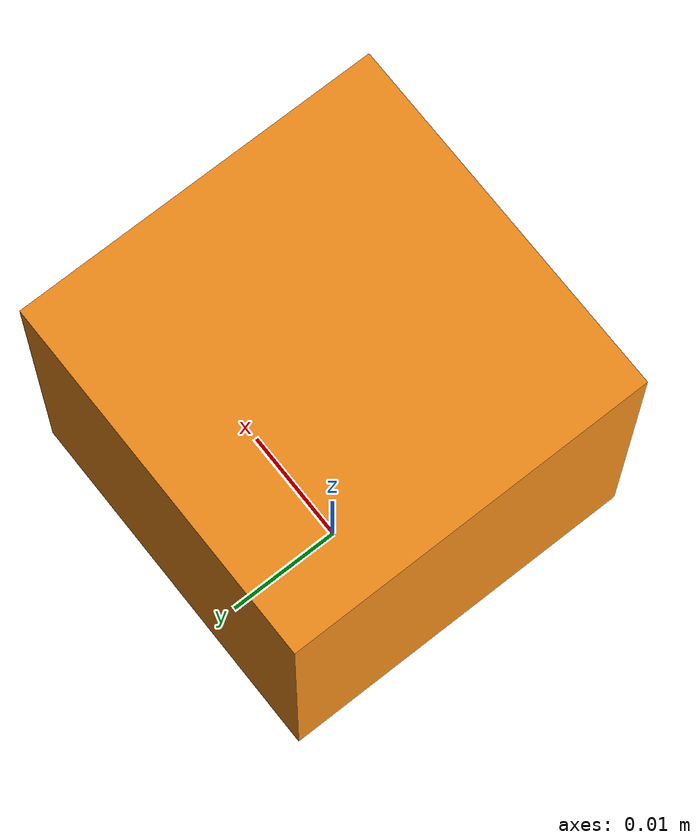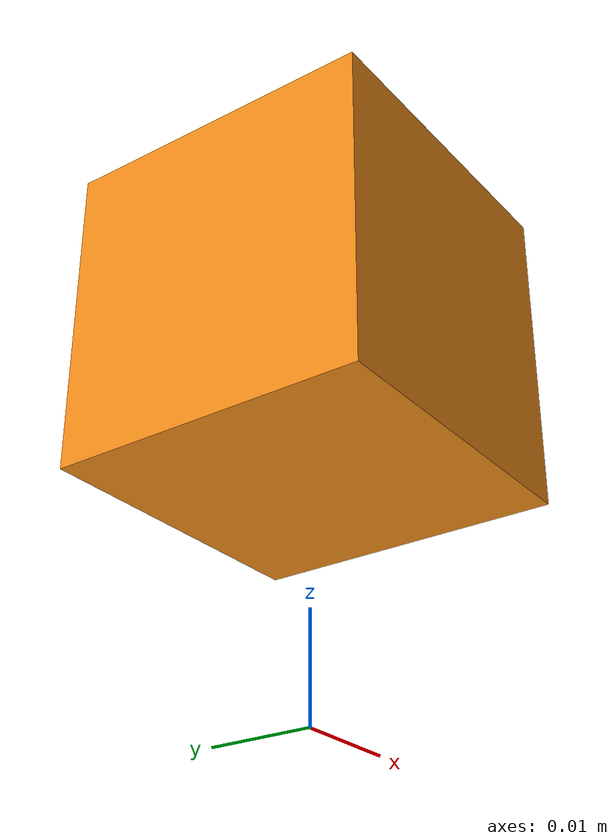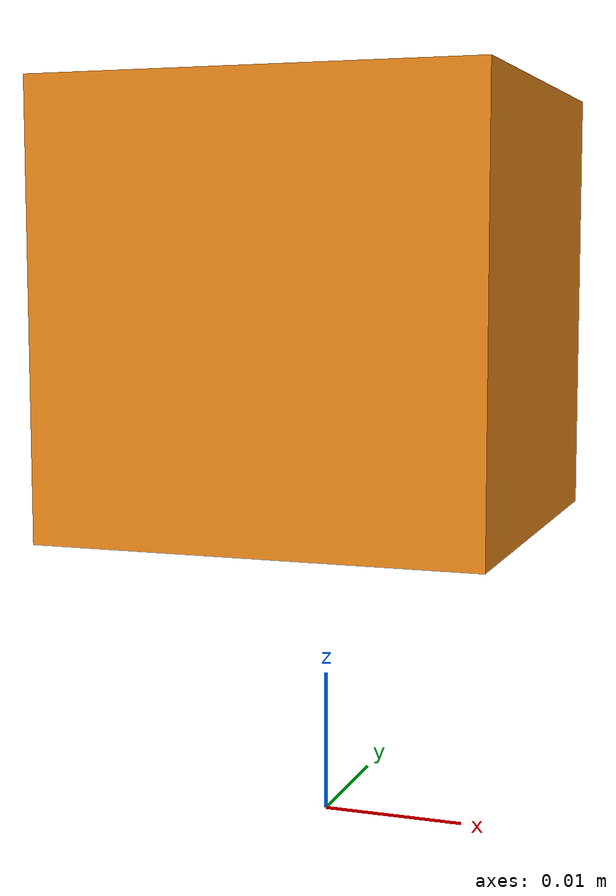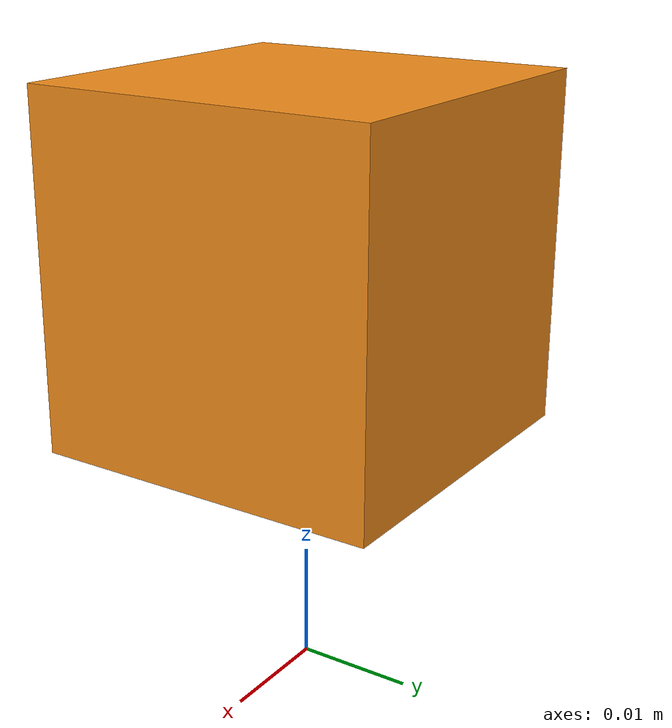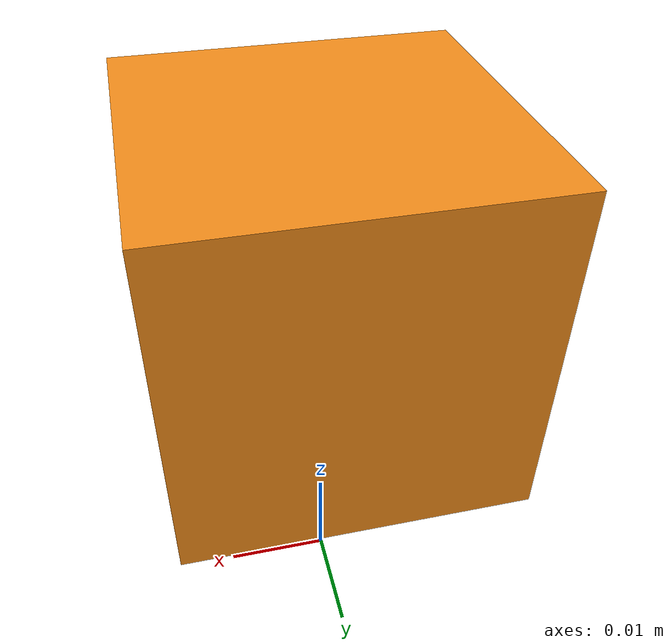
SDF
<?xml version="1.0"?>
<sdf version="1.5">
  <model name="sonar_tof_be_plus">
    <pose>0 0 0.036 0 0 0</pose>
    <link name="link">

      <inertial>
       <pose>0 0 0 0 0 0</pose>
        <mass>0.01</mass>
        <inertia>
          <ixx>0.15e-6</ixx>
          <ixy>0</ixy>
          <ixz>0</ixz>
          <iyy>0.407e-6</iyy>
          <iyz>0</iyz>
          <izz>0.407e-6</izz>
        </inertia>
      </inertial>

      <visual name="visual">
        <geometry>
          <box>
            <size>0.03 0.03 0.03</size>
          </box>
        </geometry>
        <material>
          <script>
            <name>Gazebo/Orange</name>
            <uri>file://media/materials/scripts/gazebo.material</uri>
          </script>
        </material>
      </visual>

      <sensor type="ray" name="sonar_front">
        <pose>0.05 0 0 0 0 0</pose>
        <update_rate>5</update_rate>
        <ray>
            <scan>
              <horizontal>
                <samples>5</samples>
                <resolution>1.0</resolution>
                <min_angle>-0.1309</min_angle>
                <max_angle>0.1309</max_angle>
              </horizontal>
              <vertical>
                <samples>5</samples>
                <resolution>1</resolution>
                <min_angle>-0.1309</min_angle>
                <max_angle>0.1309</max_angle>
              </vertical>
            </scan>
            <range>
              <min>0.15</min>
              <max>4.50</max>
              <resolution>0.035</resolution>
            </range>
        </ray>
        <visualize>true</visualize>
        <plugin filename="libgazebo_ros_range.so" name="gazebo_ros_range">
            <robotNamespace/>
            <gaussianNoise>0.005</gaussianNoise>
            <alwaysOn>true</alwaysOn>
            <updateRate>5</updateRate>
            <topicName>sonar_front</topicName>
            <frameName>sonar_front_link</frameName>
            <fov>0.261799</fov>
            <radiation>ultrasound</radiation>
        </plugin>
      </sensor>

      <sensor type="ray" name="tof_front">
        <pose>0.05 0.05 0 0 0 0</pose>
        <update_rate>5</update_rate>
        <ray>
            <scan>
              <horizontal>
                <samples>5</samples>
                <resolution>1.0</resolution>
                <min_angle>-0.2181662</min_angle>
                <max_angle>0.2181662</max_angle>
              </horizontal>
              <vertical>
                <samples>5</samples>
                <resolution>1</resolution>
                <min_angle>-0.2181662</min_angle>
                <max_angle>0.2181662</max_angle>
              </vertical>
            </scan>
            <range>
              <min>0.15</min>
              <max>2.0</max>
              <resolution>0.035</resolution>
            </range>
        </ray>
        <visualize>true</visualize>
        <plugin filename="libgazebo_ros_range.so" name="gazebo_ros_range">
            <robotNamespace/>
            <gaussianNoise>0.005</gaussianNoise>
            <alwaysOn>true</alwaysOn>
            <updateRate>5</updateRate>
            <topicName>tof_front</topicName>
            <frameName>tof_front_link</frameName>
            <fov>0.436332</fov>
            <radiation>infrared</radiation>
        </plugin>
      </sensor>

      <sensor type="ray" name="sonar_right">
        <pose>-0.15 -0.2 0 0 0 -1.57079632679</pose>
        <update_rate>5</update_rate>
        <ray>
            <scan>
              <horizontal>
                <samples>5</samples>
                <resolution>1.0</resolution>
                <min_angle>-0.1309</min_angle>
                <max_angle>0.1309</max_angle>
              </horizontal>
              <vertical>
                <samples>5</samples>
                <resolution>1</resolution>
                <min_angle>-0.1309</min_angle>
                <max_angle>0.1309</max_angle>
              </vertical>
            </scan>
            <range>
              <min>0.15</min>
              <max>4.50</max>
              <resolution>0.035</resolution>
            </range>
        </ray>
        <visualize>true</visualize>
        <plugin filename="libgazebo_ros_range.so" name="gazebo_ros_range">
            <robotNamespace/>
            <gaussianNoise>0.005</gaussianNoise>
            <alwaysOn>true</alwaysOn>
            <updateRate>5</updateRate>
            <topicName>sonar_right</topicName>
            <frameName>sonar_right_link</frameName>
            <fov>0.261799</fov>
            <radiation>ultrasound</radiation>
        </plugin>
      </sensor>

      <sensor type="ray" name="tof_right">
        <pose>-0.1 -0.2 0 0 0 -1.57079632679</pose>
        <update_rate>5</update_rate>
        <ray>
            <scan>
              <horizontal>
                <samples>5</samples>
                <resolution>1.0</resolution>
                <min_angle>-0.2181662</min_angle>
                <max_angle>0.2181662</max_angle>
              </horizontal>
              <vertical>
                <samples>5</samples>
                <resolution>1</resolution>
                <min_angle>-0.2181662</min_angle>
                <max_angle>0.2181662</max_angle>
              </vertical>
            </scan>
            <range>
              <min>0.15</min>
              <max>2.0</max>
              <resolution>0.035</resolution>
            </range>
        </ray>
        <visualize>true</visualize>
        <plugin filename="libgazebo_ros_range.so" name="gazebo_ros_range">
            <robotNamespace/>
            <gaussianNoise>0.005</gaussianNoise>
            <alwaysOn>true</alwaysOn>
            <updateRate>5</updateRate>
            <topicName>tof_right</topicName>
            <frameName>tof_right_link</frameName>
            <fov>0.436332</fov>
            <radiation>infrared</radiation>
        </plugin>
      </sensor>

      <sensor type="ray" name="sonar_left">
        <pose>-0.15 0.2 0 0 0 1.57079632679</pose>
        <update_rate>5</update_rate>
        <ray>
            <scan>
              <horizontal>
                <samples>5</samples>
                <resolution>1.0</resolution>
                <min_angle>-0.1309</min_angle>
                <max_angle>0.1309</max_angle>
              </horizontal>
              <vertical>
                <samples>5</samples>
                <resolution>1</resolution>
                <min_angle>-0.1309</min_angle>
                <max_angle>0.1309</max_angle>
              </vertical>
            </scan>
            <range>
              <min>0.15</min>
              <max>4.50</max>
              <resolution>0.035</resolution>
            </range>
        </ray>
        <visualize>true</visualize>
        <plugin filename="libgazebo_ros_range.so" name="gazebo_ros_range">
            <robotNamespace/>
            <gaussianNoise>0.005</gaussianNoise>
            <alwaysOn>true</alwaysOn>
            <updateRate>5</updateRate>
            <topicName>sonar_left</topicName>
            <frameName>sonar_left_link</frameName>
            <fov>0.261799</fov>
            <radiation>ultrasound</radiation>
        </plugin>
      </sensor>

      <sensor type="ray" name="tof_left">
        <pose>-0.1 0.2 0 0 0 1.57079632679</pose>
        <update_rate>5</update_rate>
        <ray>
            <scan>
              <horizontal>
                <samples>5</samples>
                <resolution>1.0</resolution>
                <min_angle>-0.2181662</min_angle>
                <max_angle>0.2181662</max_angle>
              </horizontal>
              <vertical>
                <samples>5</samples>
                <resolution>1</resolution>
                <min_angle>-0.2181662</min_angle>
                <max_angle>0.2181662</max_angle>
              </vertical>
            </scan>
            <range>
              <min>0.15</min>
              <max>2.0</max>
              <resolution>0.035</resolution>
            </range>
        </ray>
        <visualize>true</visualize>
        <plugin filename="libgazebo_ros_range.so" name="gazebo_ros_range">
            <robotNamespace/>
            <gaussianNoise>0.005</gaussianNoise>
            <alwaysOn>true</alwaysOn>
            <updateRate>5</updateRate>
            <topicName>tof_left</topicName>
            <frameName>tof_left_link</frameName>
            <fov>0.436332</fov>
            <radiation>infrared</radiation>
        </plugin>
      </sensor>

      <sensor type="ray" name="sonar_back">
        <pose>-0.35 0 0 0 0 3.14159265</pose>
        <update_rate>5</update_rate>
        <ray>
            <scan>
              <horizontal>
                <samples>5</samples>
                <resolution>1.0</resolution>
                <min_angle>-0.1309</min_angle>
                <max_angle>0.1309</max_angle>
              </horizontal>
              <vertical>
                <samples>5</samples>
                <resolution>1</resolution>
                <min_angle>-0.1309</min_angle>
                <max_angle>0.1309</max_angle>
              </vertical>
            </scan>
            <range>
              <min>0.15</min>
              <max>4.50</max>
              <resolution>0.035</resolution>
            </range>
        </ray>
        <visualize>true</visualize>
        <plugin filename="libgazebo_ros_range.so" name="gazebo_ros_range">
            <robotNamespace/>
            <gaussianNoise>0.005</gaussianNoise>
            <alwaysOn>true</alwaysOn>
            <updateRate>5</updateRate>
            <topicName>sonar_back</topicName>
            <frameName>sonar_back_link</frameName>
            <fov>0.261799</fov>
            <radiation>ultrasound</radiation>
        </plugin>
      </sensor>

      <sensor type="ray" name="tof_back">
        <pose>-0.35 0.05 0 0 0 3.14159265</pose>
        <update_rate>5</update_rate>
        <ray>
            <scan>
              <horizontal>
                <samples>5</samples>
                <resolution>1.0</resolution>
                <min_angle>-0.2181662</min_angle>
                <max_angle>0.2181662</max_angle>
              </horizontal>
              <vertical>
                <samples>5</samples>
                <resolution>1</resolution>
                <min_angle>-0.2181662</min_angle>
                <max_angle>0.2181662</max_angle>
              </vertical>
            </scan>
            <range>
              <min>0.15</min>
              <max>2.0</max>
              <resolution>0.035</resolution>
            </range>
        </ray>
        <visualize>true</visualize>
        <plugin filename="libgazebo_ros_range.so" name="gazebo_ros_range">
            <robotNamespace/>
            <gaussianNoise>0.005</gaussianNoise>
            <alwaysOn>true</alwaysOn>
            <updateRate>5</updateRate>
            <topicName>tof_back</topicName>
            <frameName>tof_back_link</frameName>
            <fov>0.436332</fov>
            <radiation>infrared</radiation>
        </plugin>
      </sensor>

      <sensor type="ray" name="sonar_up">
        <pose>0.05 0.0 0.1 0 -1.5707 0.0</pose>
        <update_rate>5</update_rate>
        <ray>
            <scan>
              <horizontal>
                <samples>5</samples>
                <resolution>1.0</resolution>
                <min_angle>-0.1309</min_angle>
                <max_angle>0.1309</max_angle>
              </horizontal>
              <vertical>
                <samples>5</samples>
                <resolution>1</resolution>
                <min_angle>-0.1309</min_angle>
                <max_angle>0.1309</max_angle>
              </vertical>
            </scan>
            <range>
              <min>0.15</min>
              <max>4.50</max>
              <resolution>0.035</resolution>
            </range>
        </ray>
        <visualize>true</visualize>
        <plugin filename="libgazebo_ros_range.so" name="gazebo_ros_range">
            <robotNamespace/>
            <gaussianNoise>0.005</gaussianNoise>
            <alwaysOn>true</alwaysOn>
            <updateRate>5</updateRate>
            <topicName>sonar_up</topicName>
            <frameName>sonar_up_link</frameName>
            <fov>0.261799</fov>
            <radiation>ultrasound</radiation>
        </plugin>
      </sensor>

      <sensor type="ray" name="tof_up">
        <pose>0.05 0.05 0.1 0 -1.5707 0.0</pose>
        <update_rate>5</update_rate>
        <ray>
            <scan>
              <horizontal>
                <samples>5</samples>
                <resolution>1.0</resolution>
                <min_angle>-0.2181662</min_angle>
                <max_angle>0.2181662</max_angle>
              </horizontal>
              <vertical>
                <samples>5</samples>
                <resolution>1</resolution>
                <min_angle>-0.2181662</min_angle>
                <max_angle>0.2181662</max_angle>
              </vertical>
            </scan>
            <range>
              <min>0.15</min>
              <max>2.0</max>
              <resolution>0.035</resolution>
            </range>
        </ray>
        <visualize>true</visualize>
        <plugin filename="libgazebo_ros_range.so" name="gazebo_ros_range">
            <robotNamespace/>
            <gaussianNoise>0.005</gaussianNoise>
            <alwaysOn>true</alwaysOn>
            <updateRate>5</updateRate>
            <topicName>tof_up</topicName>
            <frameName>tof_up_link</frameName>
            <fov>0.436332</fov>
            <radiation>infrared</radiation>
        </plugin>
      </sensor>

      <sensor type="ray" name="sonar_down">
        <pose>0.05 0.0 -0.1 0 1.5707 0.0</pose>
        <update_rate>5</update_rate>
        <ray>
            <scan>
              <horizontal>
                <samples>5</samples>
                <resolution>1.0</resolution>
                <min_angle>-0.1309</min_angle>
                <max_angle>0.1309</max_angle>
              </horizontal>
              <vertical>
                <samples>5</samples>
                <resolution>1</resolution>
                <min_angle>-0.1309</min_angle>
                <max_angle>0.1309</max_angle>
              </vertical>
            </scan>
            <range>
              <min>0.05</min>
              <max>4.50</max>
              <resolution>0.035</resolution>
            </range>
        </ray>
        <visualize>true</visualize>
        <plugin filename="libgazebo_ros_range.so" name="gazebo_ros_range">
            <robotNamespace/>
            <gaussianNoise>0.005</gaussianNoise>
            <alwaysOn>true</alwaysOn>
            <updateRate>5</updateRate>
            <topicName>sonar_down</topicName>
            <frameName>sonar_down_link</frameName>
            <fov>0.261799</fov>
            <radiation>ultrasound</radiation>
        </plugin>
      </sensor>

      <sensor type="ray" name="tof_down">
        <pose>0.05 0.05 -0.1 0 1.5707 0.0</pose>
        <update_rate>5</update_rate>
        <ray>
            <scan>
              <horizontal>
                <samples>5</samples>
                <resolution>1.0</resolution>
                <min_angle>-0.2181662</min_angle>
                <max_angle>0.2181662</max_angle>
              </horizontal>
              <vertical>
                <samples>5</samples>
                <resolution>1</resolution>
                <min_angle>-0.2181662</min_angle>
                <max_angle>0.2181662</max_angle>
              </vertical>
            </scan>
            <range>
              <min>0.05</min>
              <max>2.0</max>
              <resolution>0.035</resolution>
            </range>
        </ray>
        <visualize>true</visualize>
        <plugin filename="libgazebo_ros_range.so" name="gazebo_ros_range">
            <robotNamespace/>
            <gaussianNoise>0.005</gaussianNoise>
            <alwaysOn>true</alwaysOn>
            <updateRate>5</updateRate>
            <topicName>tof_down</topicName>
            <frameName>tof_down_link</frameName>
            <fov>0.436332</fov>
            <radiation>ultrasound</radiation>
        </plugin>
      </sensor>

    </link>
  </model>
</sdf>
